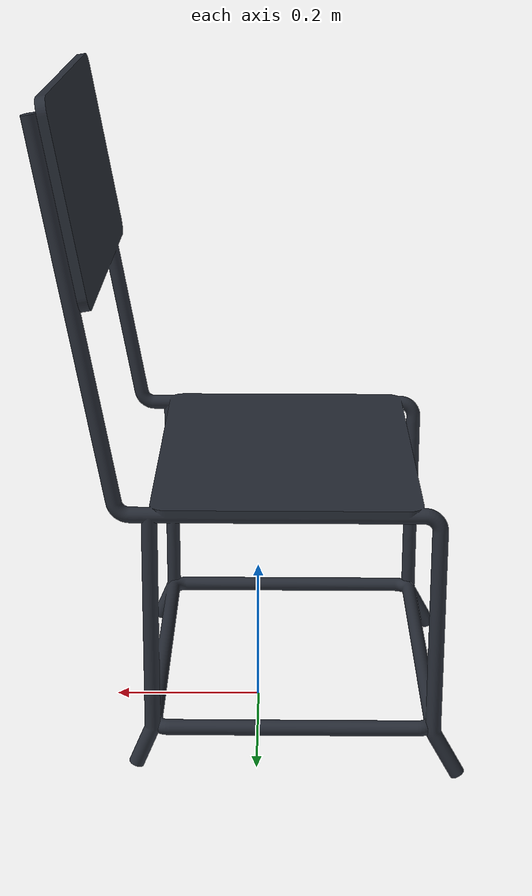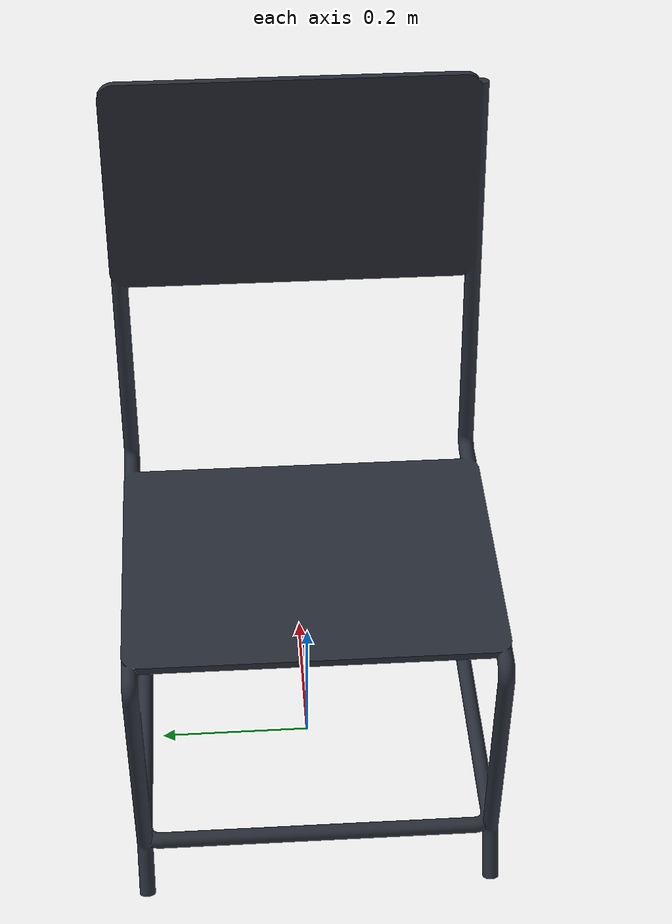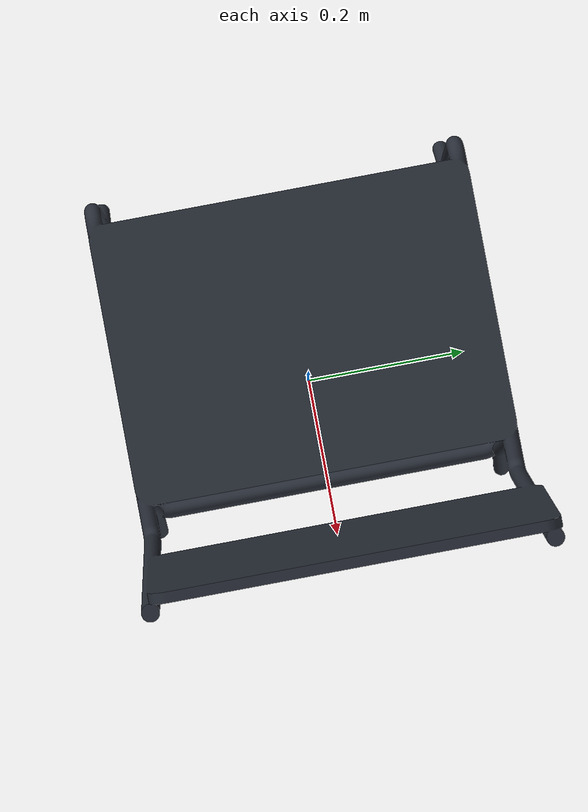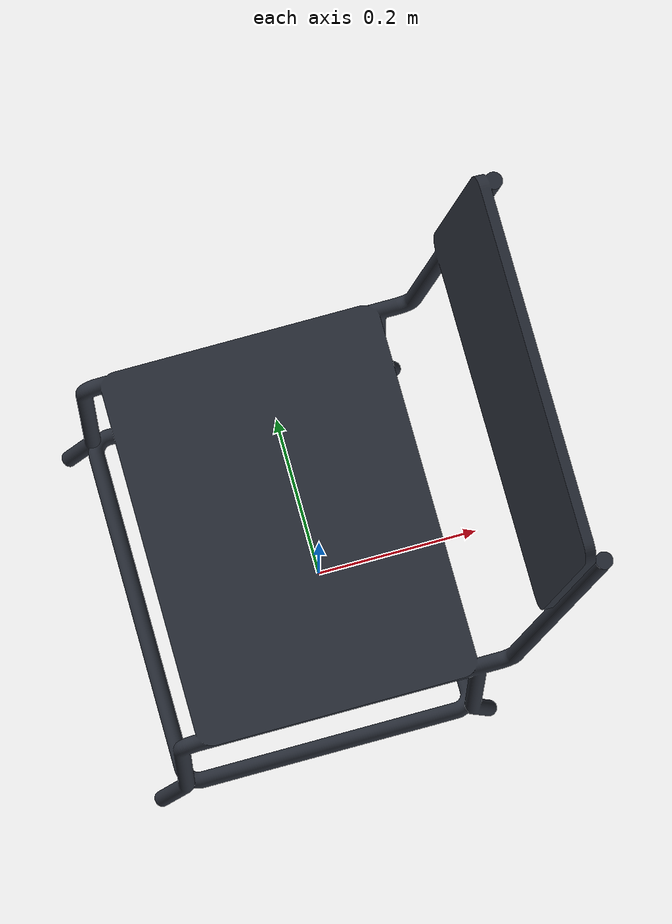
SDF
<?xml version="1.0"?>
<sdf version="1.9">
  <model name="lab_chair">
    <static>true</static>
    <link name="lab_chair_link">
      <visual name="lab_chair_visual">
        <pose>-0.26923 0.23 -0.00002 1.5708 0 0</pose>
        <geometry>
          <mesh>
            <uri>model://lab_chair/meshes/CHAIR.STL</uri>
            <scale>0.002 0.002 0.002</scale>
          </mesh>
        </geometry>
        <material>
          <ambient>0.16 0.18 0.22 1.0</ambient>
          <diffuse>0.16 0.18 0.22 1.0</diffuse>
          <specular>0.08 0.08 0.08 1.0</specular>
          <emissive>0.0 0.0 0.0 0.0</emissive>
        </material>
      </visual>
      <collision name="lab_chair_collision">
        <pose>-0.26923 0.23 -0.00002 1.5708 0 0</pose>
        <geometry>
          <mesh>
            <uri>model://lab_chair/meshes/CHAIR.STL</uri>
            <scale>0.002 0.002 0.002</scale>
          </mesh>
        </geometry>
      </collision>
    </link>
  </model>
</sdf>
